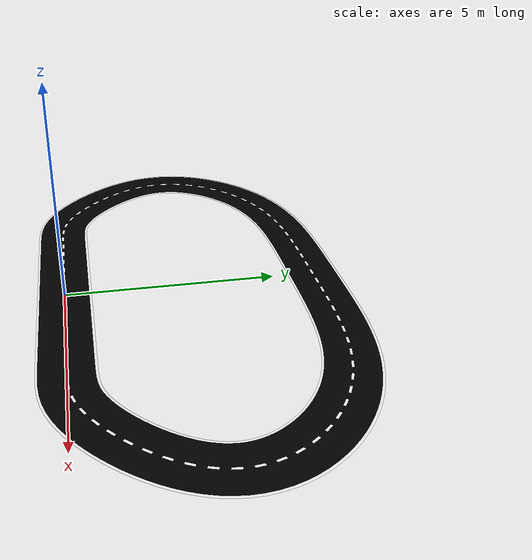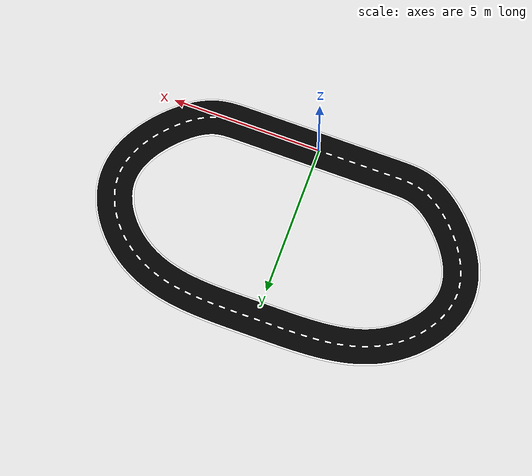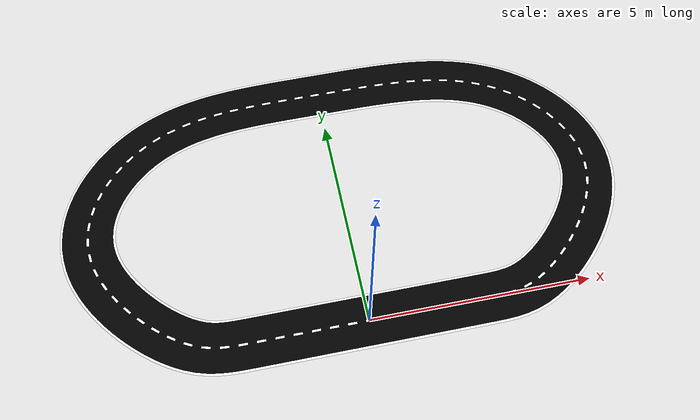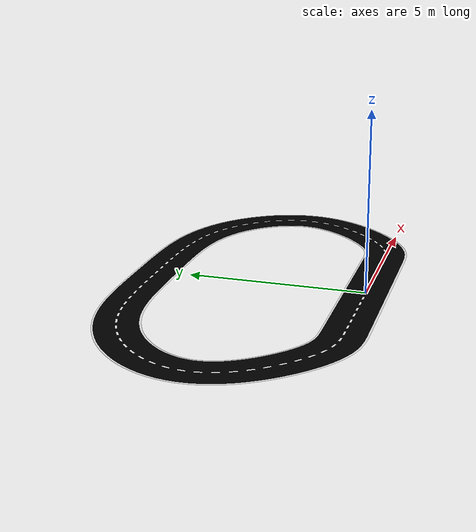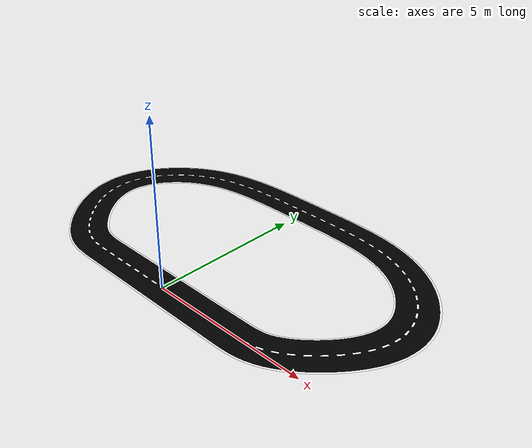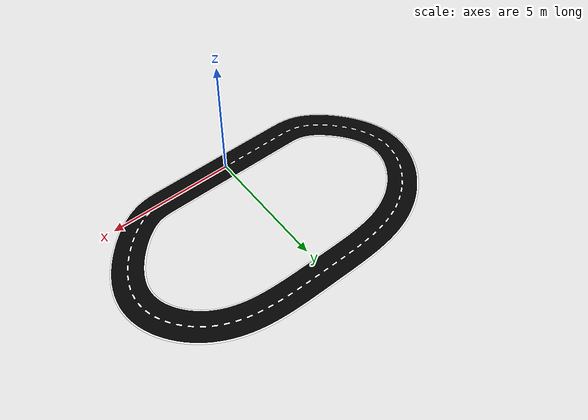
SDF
<?xml version="1.0" ?>

<sdf version="1.5">
	<world name="default">
		<!-- A global light source -->
		<include>
			<uri>model://sun</uri>
		</include>
		<scene>
			<background>0 0 0 1</background>
		</scene>
		<!-- A ground plane -->
		<include>
			<uri>model://Simulation/gazebo_models/GroundPlane50x50</uri>
		</include>
		<include>
			<uri>model://Simulation/gazebo_models/Track_Loop</uri>
		</include>
	</world>
</sdf>

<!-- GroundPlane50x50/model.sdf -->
<sdf version='1.7'>
  <model name='GroundPlane50x50'>
    <link name='link_0'>
      <inertial>
        <mass>1</mass>
        <inertia>
          <ixx>0.166667</ixx>
          <ixy>0</ixy>
          <ixz>0</ixz>
          <iyy>0.166667</iyy>
          <iyz>0</iyz>
          <izz>0.166667</izz>
        </inertia>
      </inertial>
      <pose>0 -0 0 0 -0 0</pose>
      <visual name='visual'>
        <pose>0 0 0 0 -0 0</pose>
        <geometry>
          <mesh>
            <uri>/home/tristan/ros_workspace/src/Simulation/meshes/BlenderData/GroundPlane50x50.dae</uri>
            <scale>1 1 1</scale>
          </mesh>
        </geometry>
        <transparency>1</transparency>
        <cast_shadows>0</cast_shadows>
      </visual>
      <collision name='collision'>
        <laser_retro>0</laser_retro>
        <max_contacts>10</max_contacts>
        <pose>0 0 0 0 -0 0</pose>
        <geometry>
          <mesh>
            <uri>/home/tristan/ros_workspace/src/Simulation/meshes/BlenderData/GroundPlane50x50.dae</uri>
            <scale>1 1 1</scale>
          </mesh>
        </geometry>
        <surface>
          <friction>
            <ode>
              <mu>1</mu>
              <mu2>1</mu2>
              <fdir1>0 0 0</fdir1>
              <slip1>0</slip1>
              <slip2>0</slip2>
            </ode>
            <torsional>
              <coefficient>1</coefficient>
              <patch_radius>0</patch_radius>
              <surface_radius>0</surface_radius>
              <use_patch_radius>1</use_patch_radius>
              <ode>
                <slip>0</slip>
              </ode>
            </torsional>
          </friction>
          <bounce>
            <restitution_coefficient>0</restitution_coefficient>
            <threshold>1e+06</threshold>
          </bounce>
          <contact>
            <collide_without_contact>0</collide_without_contact>
            <collide_without_contact_bitmask>1</collide_without_contact_bitmask>
            <collide_bitmask>1</collide_bitmask>
            <ode>
              <soft_cfm>0</soft_cfm>
              <soft_erp>0.2</soft_erp>
              <kp>1e+13</kp>
              <kd>1</kd>
              <max_vel>0.01</max_vel>
              <min_depth>0</min_depth>
            </ode>
            <bullet>
              <split_impulse>1</split_impulse>
              <split_impulse_penetration_threshold>-0.01</split_impulse_penetration_threshold>
              <soft_cfm>0</soft_cfm>
              <soft_erp>0.2</soft_erp>
              <kp>1e+13</kp>
              <kd>1</kd>
            </bullet>
          </contact>
        </surface>
      </collision>
    </link>
    <static>1</static>
    <allow_auto_disable>1</allow_auto_disable>
  </model>
</sdf>

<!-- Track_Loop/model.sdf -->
<sdf version='1.7'>
  <model name='Track_Loop'>
    <link name='link_0'>
      <inertial>
        <mass>1</mass>
        <inertia>
          <ixx>0.166667</ixx>
          <ixy>0</ixy>
          <ixz>0</ixz>
          <iyy>0.166667</iyy>
          <iyz>0</iyz>
          <izz>0.166667</izz>
        </inertia>
      </inertial>
      <pose>0 -0 0 0 -0 0</pose>
      <visual name='visual'>
        <pose>0 0 0 0 -0 0</pose>
        <geometry>
          <mesh>
            <uri>/home/tristan/ros_workspace/src/Simulation/meshes/BlenderData/Track_Loop.dae</uri>
            <scale>1 1 1</scale>
          </mesh>
        </geometry>
        <transparency>0</transparency>
        <cast_shadows>1</cast_shadows>
      </visual>
      <collision name='collision'>
        <laser_retro>0</laser_retro>
        <max_contacts>10</max_contacts>
        <pose>0 0 0 0 -0 0</pose>
        <geometry>
          <mesh>
            <uri>/home/tristan/ros_workspace/src/Simulation/meshes/BlenderData/Track_Loop.dae</uri>
            <scale>1 1 1</scale>
          </mesh>
        </geometry>
        <surface>
          <friction>
            <ode>
              <mu>1</mu>
              <mu2>1</mu2>
              <fdir1>0 0 0</fdir1>
              <slip1>0</slip1>
              <slip2>0</slip2>
            </ode>
            <torsional>
              <coefficient>1</coefficient>
              <patch_radius>0</patch_radius>
              <surface_radius>0</surface_radius>
              <use_patch_radius>1</use_patch_radius>
              <ode>
                <slip>0</slip>
              </ode>
            </torsional>
          </friction>
          <bounce>
            <restitution_coefficient>0</restitution_coefficient>
            <threshold>1e+06</threshold>
          </bounce>
          <contact>
            <collide_without_contact>0</collide_without_contact>
            <collide_without_contact_bitmask>1</collide_without_contact_bitmask>
            <collide_bitmask>1</collide_bitmask>
            <ode>
              <soft_cfm>0</soft_cfm>
              <soft_erp>0.2</soft_erp>
              <kp>1e+13</kp>
              <kd>1</kd>
              <max_vel>0.01</max_vel>
              <min_depth>0</min_depth>
            </ode>
            <bullet>
              <split_impulse>1</split_impulse>
              <split_impulse_penetration_threshold>-0.01</split_impulse_penetration_threshold>
              <soft_cfm>0</soft_cfm>
              <soft_erp>0.2</soft_erp>
              <kp>1e+13</kp>
              <kd>1</kd>
            </bullet>
          </contact>
        </surface>
      </collision>
    </link>
    <static>1</static>
    <allow_auto_disable>1</allow_auto_disable>
  </model>
</sdf>
